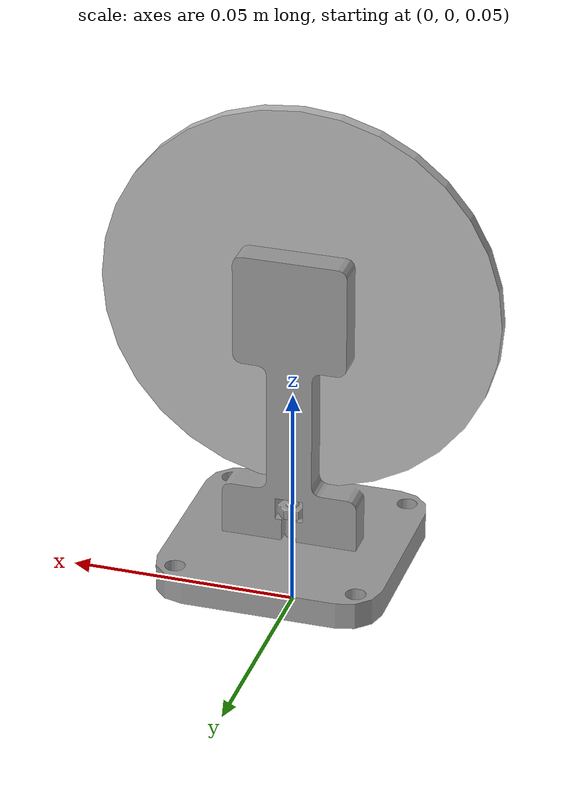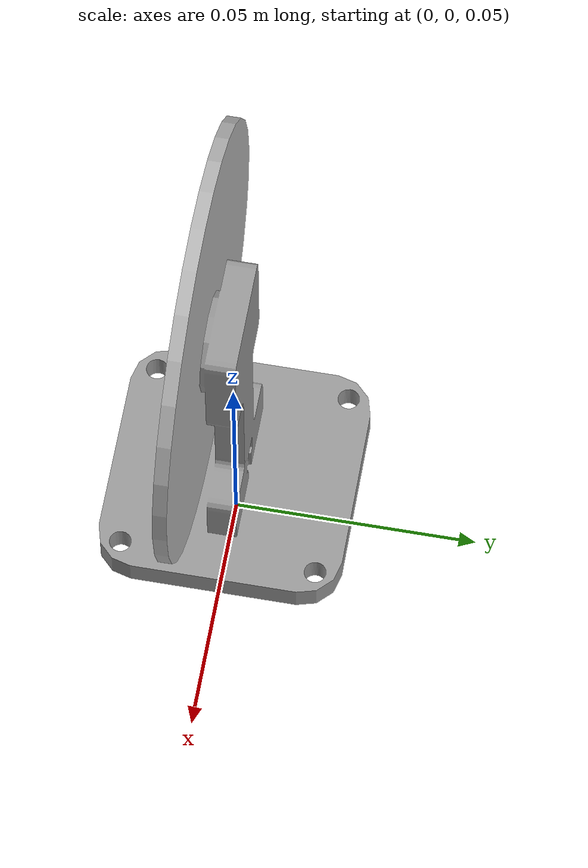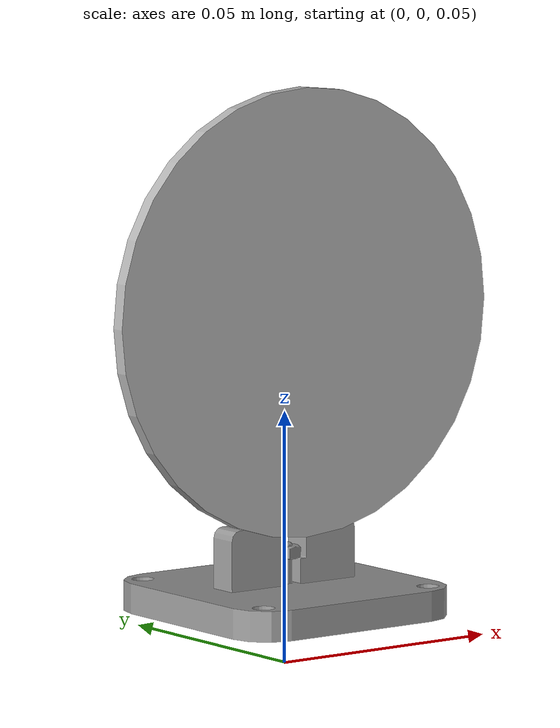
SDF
<?xml version='1.0'?>
<sdf version='1.6'>
  <model name='StopSign'>
    <link name='base'>
      <!--visual for base-->
      <visual name='visual'>
      <pose frame=''>0 0 0.06 1.5707 0 0</pose>
        <geometry>
          <mesh>
            <uri>model://StopSign/meshes/Sign_pedestal.dae</uri>
            <scale>1 1 1</scale>
          </mesh>
        </geometry>
        <material>
          <script>
            <name>Gazebo/Grey</name>
            <uri>file://media/materials/scripts/gazebo.material</uri>
          </script>
        </material>
      </visual>
      <!--collision for base-->
      <collision name='collision'>
       <pose frame=''>0 0 0.12 0 -0 0</pose>
        <geometry>
          <cylinder>
            <radius>0.02</radius>
            <length>0.12</length>
          </cylinder>
        </geometry>
      </collision>
      <!--inertial for base-->
      <inertial>
        <pose frame=''>0 0 0 0 0 0</pose>
        <mass>0.015</mass>
        <inertia>
          <ixx>0.166667</ixx>
          <ixy>0</ixy>
          <ixz>0</ixz>
          <iyy>0.166667</iyy>
          <iyz>0</iyz>
          <izz>0.166667</izz>
        </inertia>
      </inertial>
    </link>
    <link name='sign'>
    <!--visual for sign-->
      <visual name='visual'>
      <pose frame=''>0 -0.006 0.12 1.57 0 0</pose>
        <geometry>
        <mesh>
            <uri>model://StopSign/meshes/stop_sign.dae</uri>
            <scale>1 1 1</scale>
         </mesh>
        </geometry>
        <material>
        <script>
            <uri>model://StopSign/materials/scripts</uri>
            <uri>model://StopSign/materials/textures/</uri>
            <name>StopSign</name>
         </script>
        </material>
      </visual>
      <inertial>
        <pose frame=''>0 0 0 0 -0 0</pose>
        <mass>0.001</mass>
        <inertia>
          <ixx>0.166667</ixx>
          <ixy>0</ixy>
          <ixz>0</ixz>
          <iyy>0.166667</iyy>
          <iyz>0</iyz>
          <izz>0.166667</izz>
        </inertia>
      </inertial>
    </link>
  <!--Joint-->
    <joint name='joint_sign' type='fixed'>
      <parent>base</parent>
      <child>sign</child>
      <pose frame=''>0 0 0 0 0 0</pose>
    </joint>
  </model>
</sdf>
